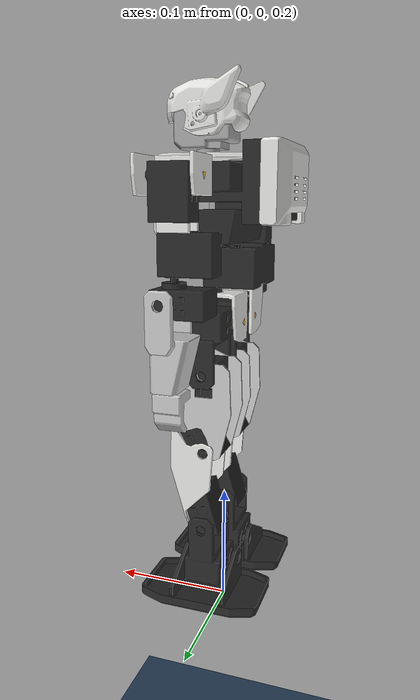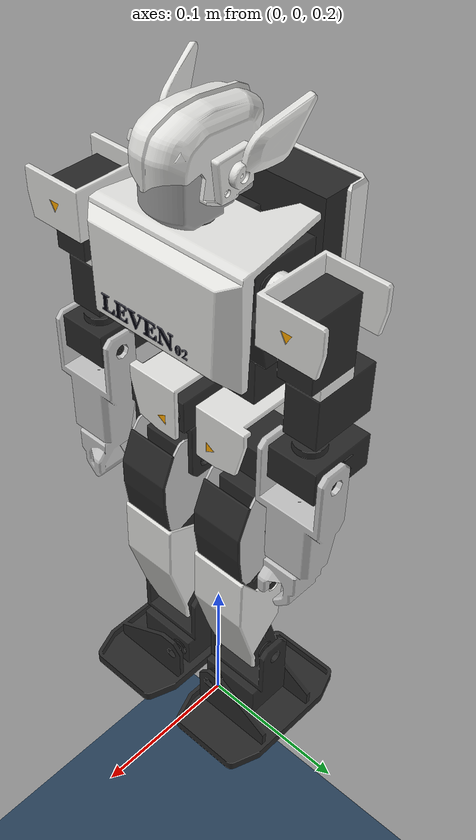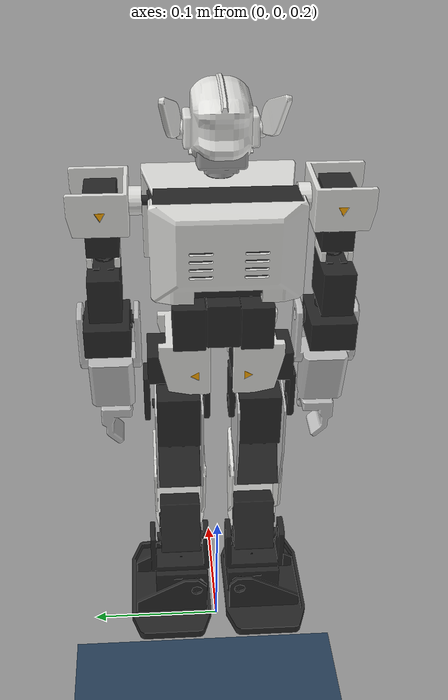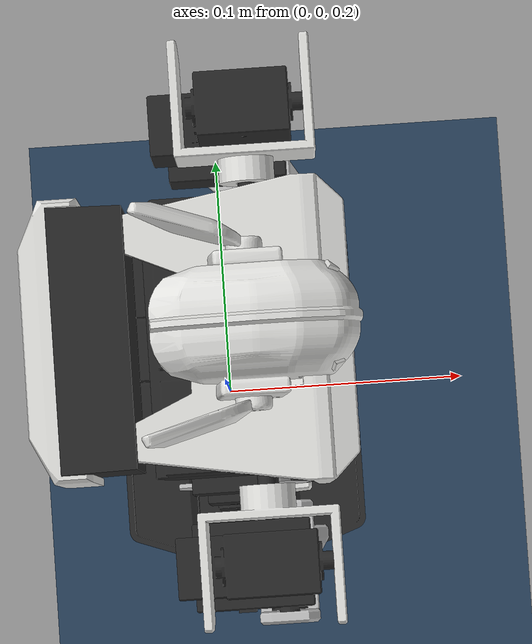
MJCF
<!--
  File: scene.xml
  Author: Izumi Ninagawa
  License: MIT License
  Copyright (c) 2026 Izumi Ninagawa
-->
<mujoco model="leven_mjcf scene">
  <include file="leven_mjcf.xml"/>

  <statistic center="0 0 0.350000" extent="0.800000"/>

  <visual>
    <headlight diffuse="0.6 0.6 0.6" ambient="0.3 0.3 0.3" specular="0 0 0"/>
    <rgba haze="0.15 0.25 0.35 1"/>
    <global azimuth="-130" elevation="-20"/>
  </visual>

  <asset>
    <texture type="skybox" builtin="gradient" rgb1="0.3 0.5 0.7" rgb2="0 0 0" width="512" height="3072"/>
    <texture type="2d" name="groundplane" builtin="checker" mark="edge" rgb1="0.2 0.3 0.4" rgb2="0.1 0.2 0.3"
      markrgb="0.8 0.8 0.8" width="300" height="300"/>
    <material name="groundplane" texture="groundplane" texuniform="true" texrepeat="5 5" reflectance="0.2"/>
  </asset>

  <worldbody>
    <!-- Ground/Environment -->
    <light pos="0 0 1.5" dir="0 0 -1" directional="true"/>
    <geom name="floor" size="0 0 0.05" type="plane" material="groundplane" group="0"/>
  </worldbody>
</mujoco>

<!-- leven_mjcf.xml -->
<!--
  File: leven_mjcf.xml
  Author: Izumi Ninagawa
  License: MIT License
  Copyright (c) 2026 Izumi Ninagawa
-->
<mujoco model="leven_mjcf">
  <compiler angle="radian" autolimits="true" />

  <option timestep="0.002" iterations="30" cone="elliptic" impratio="100" />

  <default>
    <!-- textset -->
    <joint damping="0.1" armature="0.01" frictionloss="0.005"/>
    <position inheritrange="1" timeconst="0.01"/>
    <geom friction="0.4" margin="0.001" condim="3"/>
    <!-- textーtext：group=0 -->
    <default class="collision">
      <geom group="0"/>
    </default>
    <!-- text：group=1(text) -->
    <default class="visual">
      <geom contype="0" conaffinity="0" group="1"/>
    </default>
  </default>

  <asset>
    <material name="metal" rgba=".9 .95 .95 1" />
    <material name="black" rgba="0 0 0 1" />
    <material name="white" rgba="1 1 1 1" />
    <material name="gray" rgba="0.671705 0.692426 0.774270 1" />

    <mesh name="c_chest_laven" file="assets/c_chest_laven.obj" />
    <mesh name="c_chest_leven_dec1" file="assets/c_chest_leven_dec1.obj" />
    <mesh name="c_chest_leven_dec2" file="assets/c_chest_leven_dec2.obj" />
    <mesh name="c_head_laven" file="assets/c_head_laven.obj" />
    <mesh name="c_waist" file="assets/c_waist.obj" />
    <mesh name="l_ankle" file="assets/l_ankle.obj" />
    <mesh name="l_arm_lower" file="assets/l_arm_lower.obj" />
    <mesh name="l_arm_upper" file="assets/l_arm_upper.obj" />
    <mesh name="l_arm_upper_dec1" file="assets/l_arm_upper_dec1.obj" />
    <mesh name="l_elbow" file="assets/l_elbow.obj" />
    <mesh name="l_foot_middle" file="assets/l_foot_middle.obj" />
    <mesh name="l_hipjoint_lower" file="assets/l_hipjoint_lower.obj" />
    <mesh name="l_hipjoint_upper" file="assets/l_hipjoint_upper.obj" />
    <mesh name="l_hipjoint_upper_dec1" file="assets/l_hipjoint_upper_dec1.obj" />
    <mesh name="l_leg_lower" file="assets/l_leg_lower.obj" />
    <mesh name="l_leg_lower_dec1" file="assets/l_leg_lower_dec1.obj" />
    <mesh name="l_leg_upper" file="assets/l_leg_upper.obj" />
    <mesh name="l_leg_upper_dec1" file="assets/l_leg_upper_dec1.obj" />
    <mesh name="l_shoulder" file="assets/l_shoulder.obj" />
    <mesh name="l_shoulder_dec1" file="assets/l_shoulder_dec1.obj" />
    <mesh name="r_ankle" file="assets/r_ankle.obj" />
    <mesh name="r_arm_lower" file="assets/r_arm_lower.obj" />
    <mesh name="r_arm_upper" file="assets/r_arm_upper.obj" />
    <mesh name="r_arm_upper_dec1" file="assets/r_arm_upper_dec1.obj" />
    <mesh name="r_elbow" file="assets/r_elbow.obj" />
    <mesh name="r_foot_middle" file="assets/r_foot_middle.obj" />
    <mesh name="r_hipjoint_lower" file="assets/r_hipjoint_lower.obj" />
    <mesh name="r_hipjoint_upper" file="assets/r_hipjoint_upper.obj" />
    <mesh name="r_hipjoint_upper_dec1" file="assets/r_hipjoint_upper_dec1.obj" />
    <mesh name="r_leg_lower" file="assets/r_leg_lower.obj" />
    <mesh name="r_leg_lower_dec1" file="assets/r_leg_lower_dec1.obj" />
    <mesh name="r_leg_upper" file="assets/r_leg_upper.obj" />
    <mesh name="r_leg_upper_dec1" file="assets/r_leg_upper_dec1.obj" />
    <mesh name="r_shoulder" file="assets/r_shoulder.obj" />
    <mesh name="r_shoulder_dec1" file="assets/r_shoulder_dec1.obj" />
    <mesh name="c_head_dec1" file="assets/c_head_dec1.obj" />
  </asset>

  <worldbody>
    <body name="c_pelvis" pos="0 0 0.5">
      <freejoint />
      <inertial pos="-0.011334 0.000031 -0.001324" mass="0.1428" fullinertia="0.00007893 0.00005228 0.00008515 0 0 0" />
      <!-- text(displaytext) -->
      <geom class="visual" type="mesh" mesh="c_waist" rgba="0.153 0.153 0.153 1.0" group="1"/>
      <!-- textー(text) -->
      <geom class="collision" type="box" size="0.0205 0.03205 0.01475" pos="-0.0115 0.0 -0.002" quat="1.0 0.0 0.0 0.0" group="3"/>
      <body name="c_torso" pos="0.0 -0.0 0.0198">
        <joint name="c_spine_01_yp" type="hinge" pos="0 0 0" axis="0 0 1" range="-3.141592653589793 3.141592653589793" limited="true" margin="0.0035" armature="0.01" frictionloss="0.005" damping="0.18" />
        <inertial pos="-0.016071 -0.000121 0.032638" mass="0.4215" fullinertia="0.0006944 0.00082653 0.00086974 0 0 0" />
        <!-- text(displaytext) -->
        <geom class="visual" type="mesh" mesh="c_chest_laven" rgba="0.153 0.153 0.153 1.0" group="1"/>
        <!-- textー(text) -->
        <geom class="collision" type="box" size="0.0156 0.04235 0.0297" pos="-0.0396 0.0 0.0409" quat="1.0 0.0 0.0 0.0" group="3"/>
        <geom class="collision" type="box" size="0.0061 0.04885 0.0332" pos="0.0405 0.0 0.0299" quat="1.0 0.0 0.0 0.0" group="3"/>
        <body name="c_head" pos="0.01603 0.0 0.0624">
          <joint name="c_neck_zy" type="hinge" pos="0 0 0" axis="0 0 1" range="-3.141592653589793 3.141592653589793" limited="true" margin="0.0035" armature="0.01" frictionloss="0.005" damping="0.18" />
          <inertial pos="0.004414 0.000003 0.02119" mass="0.013" fullinertia="0.0000041 0.00000528 0.00000497 0 0 0" />
          <!-- text(displaytext) -->
          <geom class="visual" type="mesh" mesh="c_head_laven" rgba="0.635 0.635 0.635 1.0" group="1"/>
          <!-- textー(text) -->
          <geom class="collision" type="box" size="0.0235 0.0145 0.01575" pos="0.0032 0.0 0.0227" quat="1.0 0.0 0.0 0.0" group="3"/>
          <geom class="visual" type="mesh" mesh="c_head_dec1" rgba="0.882 0.882 0.871 1.0" pos="0.0 0.0 0.0"/>
          <camera name="CAMERA_NODE" pos="0.033 5e-06 0.024" euler="0.0 0.0 0.0" fovy="45"/>
        </body>
        <body name="l_shoulder" pos="0.01603 0.048855 0.045405">
          <joint name="l_shoulder_yp" type="hinge" pos="0 0 0" axis="0 1 0" range="-3.141592653589793 3.141592653589793" limited="true" margin="0.0035" armature="0.01" frictionloss="0.005" damping="0.18" />
          <inertial pos="-0.000143 0.021036 0.000103" mass="0.014" fullinertia="0.00000319 0.00000465 0.0000058 0 0 0" />
          <!-- text(displaytext) -->
          <geom class="visual" type="mesh" mesh="l_shoulder" rgba="0.882 0.882 0.871 1.0" group="1"/>
          <!-- textー(text) -->
          <geom class="collision" type="cylinder" size="0.01 0.0036" pos="0.0 0.004 0.0" quat="0.7071067811865476 -0.7071067811865475 0.0 0.0" group="3"/>
          <body name="l_arm_upper" pos="0.0 0.02555 0.0">
            <joint name="l_shoulder_xr" type="hinge" pos="0 0 0" axis="1 0 0" range="-0.174532925199433 3.316125578789226" limited="true" margin="0.0035" armature="0.01" frictionloss="0.005" damping="0.18" />
            <inertial pos="-0.002104 0.000357 -0.033527" mass="0.098" fullinertia="0.00007063 0.00007913 0.00003688 0 0 0" />
            <!-- text(displaytext) -->
            <geom class="visual" type="mesh" mesh="l_arm_upper" rgba="0.153 0.153 0.153 1.0" group="1"/>
            <!-- textー(text) -->
            <geom class="collision" type="box" size="0.01445 0.01045 0.038" pos="-0.0002 0.0 -0.0305" quat="1.0 0.0 0.0 0.0" group="3"/>
            <body name="l_elbow" pos="-0.00015 0.0 -0.074">
              <joint name="l_elbow_zy" type="hinge" pos="0 0 0" axis="0 0 1" range="-1.570796326794897 1.570796326794897" limited="true" margin="0.0035" armature="0.01" frictionloss="0.005" damping="0.18" />
              <inertial pos="-0.006581 0.000258 -0.014196" mass="0.044" fullinertia="0.0000105 0.00001256 0.00001357 0 0 0" />
              <!-- text(displaytext) -->
              <geom class="visual" type="mesh" mesh="l_elbow" rgba="0.153 0.153 0.153 1.0" group="1"/>
              <!-- textー(text) -->
              <geom class="collision" type="box" size="0.0205 0.01505 0.01005" pos="-0.007 0.0005 -0.0145" quat="1.0 0.0 0.0 0.0" group="3"/>
              <body name="l_arm_lower" pos="0.004527 0.0 -0.01457">
                <joint name="l_elbow_yp" type="hinge" pos="0 0 0" axis="0 1 0" range="-2.443460952792061 0.523598775598299" limited="true" margin="0.0035" armature="0.01" frictionloss="0.005" damping="0.18" />
                <inertial pos="-0.002104 0.000357 -0.043527" mass="0.03" fullinertia="0.00005277 0.00005106 0.00001242 0 0 0" />
                <!-- text(displaytext) -->
                <geom class="visual" type="mesh" mesh="l_arm_lower" rgba="0.757 0.757 0.757 1.0" group="1"/>
                <!-- textー(text) -->
                <geom class="collision" type="capsule" size="0.0161 0.01945" pos="-0.0022 0.0 -0.0616" quat="1.0 0.0 0.0 0.0" group="3"/>
              </body>
            </body>
            <geom class="visual" type="mesh" mesh="l_arm_upper_dec1" rgba="0.882 0.882 0.871 1.0" pos="0.0 0.0 0.0"/>
          </body>
          <geom class="visual" type="mesh" mesh="l_shoulder_dec1" rgba="1.0 0.667 0.0 1.0" pos="0.0 0.0 0.0"/>
        </body>
        <body name="r_shoulder" pos="0.01603 -0.048855 0.045405">
          <joint name="r_shoulder_yp" type="hinge" pos="0 0 0" axis="0 1 0" range="-3.141592653589793 3.141592653589793" limited="true" margin="0.0035" armature="0.01" frictionloss="0.005" damping="0.18" />
          <inertial pos="-0.000143 -0.021036 0.000103" mass="0.014" fullinertia="0.00000319 0.00000465 0.0000058 0 0 0" />
          <!-- text(displaytext) -->
          <geom class="visual" type="mesh" mesh="r_shoulder" rgba="0.882 0.882 0.871 1.0" group="1"/>
          <!-- textー(text) -->
          <geom class="collision" type="cylinder" size="0.01 0.0036" pos="0.0 -0.004 0.0" quat="0.7071067811865476 0.7071067811865475 0.0 -0.0" group="3"/>
          <body name="r_arm_upper" pos="0.0 -0.02555 0.0">
            <joint name="r_shoulder_xr" type="hinge" pos="0 0 0" axis="1 0 0" range="-3.316125578789226 0.174532925199433" limited="true" margin="0.0035" armature="0.01" frictionloss="0.005" damping="0.18" />
            <inertial pos="-0.002104 -0.000357 -0.033527" mass="0.098" fullinertia="0.00007063 0.00007913 0.00003688 0 0 0" />
            <!-- text(displaytext) -->
            <geom class="visual" type="mesh" mesh="r_arm_upper" rgba="0.153 0.153 0.153 1.0" group="1"/>
            <!-- textー(text) -->
            <geom class="collision" type="box" size="0.01445 0.01045 0.038" pos="-0.0002 0.0 -0.0305" quat="1.0 0.0 0.0 0.0" group="3"/>
            <body name="r_elbow" pos="-0.00015 -0.0 -0.074">
              <joint name="r_elbow_zy" type="hinge" pos="0 0 0" axis="0 0 1" range="-1.570796326794897 1.570796326794897" limited="true" margin="0.0035" armature="0.01" frictionloss="0.005" damping="0.18" />
              <inertial pos="-0.006581 -0.000258 -0.014196" mass="0.044" fullinertia="0.0000105 0.00001256 0.00001357 0 0 0" />
              <!-- text(displaytext) -->
              <geom class="visual" type="mesh" mesh="r_elbow" rgba="0.153 0.153 0.153 1.0" group="1"/>
              <!-- textー(text) -->
              <geom class="collision" type="box" size="0.0205 0.01505 0.01005" pos="-0.007 -0.0005 -0.0145" quat="1.0 0.0 0.0 0.0" group="3"/>
              <body name="r_arm_lower" pos="0.004527 -0.0 -0.01457">
                <joint name="r_elbow_yp" type="hinge" pos="0 0 0" axis="0 1 0" range="-2.443460952792061 0.523598775598299" limited="true" margin="0.0035" armature="0.01" frictionloss="0.005" damping="0.18" />
                <inertial pos="-0.002104 -0.000357 -0.043527" mass="0.03" fullinertia="0.00005277 0.00005106 0.00001242 0 0 0" />
                <!-- text(displaytext) -->
                <geom class="visual" type="mesh" mesh="r_arm_lower" rgba="0.757 0.757 0.757 1.0" group="1"/>
                <!-- textー(text) -->
                <geom class="collision" type="capsule" size="0.0161 0.02195" pos="-0.0022 0.0 -0.0626" quat="1.0 0.0 0.0 0.0" group="3"/>
              </body>
            </body>
            <geom class="visual" type="mesh" mesh="r_arm_upper_dec1" rgba="0.882 0.882 0.871 1.0" pos="0.0 -0.0 0.0"/>
          </body>
          <geom class="visual" type="mesh" mesh="r_shoulder_dec1" rgba="1.0 0.667 0.0 1.0" pos="0.0 -0.0 0.0"/>
        </body>
        <geom class="visual" type="mesh" mesh="c_chest_leven_dec1" rgba="0.882 0.882 0.871 1.0" pos="0.0 0.0 0.0"/>
        <geom class="visual" type="mesh" mesh="c_chest_leven_dec2" rgba="0.0 0.0 0.039 1.0" pos="0.0 0.0 0.0"/>
        <site name="IMU_SITE" pos="-0.04 1.9e-05 0.04" euler="0.0 0.0 0.0" size="0.01" group="4"/>
      </body>
      <body name="l_hipjoint_upper" pos="0.0 0.02155 -0.02175">
        <joint name="l_hipjoint_zy" type="hinge" pos="0 0 0" axis="0 0 1" range="-0.349065850398866 0.523598775598299" limited="true" margin="0.0035" armature="0.01" frictionloss="0.005" damping="0.18" />
        <inertial pos="0.002326 0.001426 -0.01121" mass="0.0115" fullinertia="0.00000402 0.0000068 0.0000065 0 0 0" />
        <!-- text(displaytext) -->
        <geom class="visual" type="mesh" mesh="l_hipjoint_upper" rgba="0.882 0.882 0.871 1.0" group="1"/>
        <!-- textー(text) -->
        <geom class="collision" type="box" size="0.02305 0.01375 0.0015" pos="0.0028 0.0005 -0.001" quat="1.0 0.0 0.0 0.0" group="3"/>
        <body name="l_hipjoint_lower" pos="0.0 -0.00455 -0.0232">
          <joint name="l_hipjoint_xr" type="hinge" pos="0 0 0" axis="1 0 0" range="-0.174532925199433 1.570796326794897" limited="true" margin="0.0035" armature="0.01" frictionloss="0.005" damping="0.18" />
          <inertial pos="0.003874 0.0115 -0.00485" mass="0.058" fullinertia="0.00003081 0.00001833 0.00002693 0 0 0" />
          <!-- text(displaytext) -->
          <geom class="visual" type="mesh" mesh="l_hipjoint_lower" rgba="0.153 0.153 0.153 1.0" group="1"/>
          <!-- textー(text) -->
          <geom class="collision" type="box" size="0.01455 0.02025 0.00995" pos="0.0038 0.0115 0.0" quat="1.0 0.0 0.0 0.0" group="3"/>
          <body name="l_leg_upper" pos="0.0039 0.0115 -0.0385">
            <joint name="l_hipjoint_yp" type="hinge" pos="0 0 0" axis="0 1 0" range="-1.570796326794897 1.570796326794897" limited="true" margin="0.0035" armature="0.01" frictionloss="0.005" damping="0.18" />
            <inertial pos="0.004137 -0.00005 -0.032305" mass="0.091" fullinertia="0.00006864 0.00006946 0.0000304 0 0 0" />
            <!-- text(displaytext) -->
            <geom class="visual" type="mesh" mesh="l_leg_upper" rgba="0.153 0.153 0.153 1.0" group="1"/>
            <!-- textー(text) -->
            <geom class="collision" type="box" size="0.00965 0.01605 0.03825" pos="0.0003 0.0003 -0.0298" quat="1.0 0.0 0.0 0.0" group="3"/>
            <body name="l_leg_lower" pos="7e-05 0.0 -0.06501">
              <joint name="l_knee_yp" type="hinge" pos="0 0 0" axis="0 1 0" range="-0.087266462599716 2.792526803190927" limited="true" margin="0.0035" armature="0.01" frictionloss="0.005" damping="0.18" />
              <inertial pos="0.001202 0.0001 -0.030834" mass="0.061" fullinertia="0.00003888 0.00003893 0.00001607 0 0 0" />
              <!-- text(displaytext) -->
              <geom class="visual" type="mesh" mesh="l_leg_lower" rgba="0.153 0.153 0.153 1.0" group="1"/>
              <!-- textー(text) -->
              <geom class="collision" type="box" size="0.01025 0.0155 0.02" pos="0.0033 0.0003 -0.0542" quat="0.9902680684146087 -0.0009604974588484768 0.13916978883016126 -2.27680269874065e-10" group="3"/>
              <body name="l_ankle" pos="8e-05 -1e-06 -0.0652">
                <joint name="l_ankle_yp" type="hinge" pos="0 0 0" axis="0 1 0" range="-1.919862177193763 2.268928027592628" limited="true" margin="0.0035" armature="0.01" frictionloss="0.005" damping="0.18" />
                <inertial pos="0.001028 0.00022 -0.032516" mass="0.058" fullinertia="0.0000342 0.00002997 0.00002268 0 0 0" />
                <!-- text(displaytext) -->
                <geom class="visual" type="mesh" mesh="l_ankle" rgba="0.153 0.153 0.153 1.0" group="1"/>
                <!-- textー(text) -->
                <geom class="collision" type="box" size="0.01455 0.02075 0.00945" pos="-0.0002 0.0 -0.0385" quat="1.0 0.0 0.0 0.0" group="3"/>
                <body name="l_foot" pos="0.0 -0.011503 -0.03848">
                  <joint name="l_ankle_xr" type="hinge" pos="0 0 0" axis="1 0 0" range="-1.570796326794897 0.349065850398866" limited="true" margin="0.0035" armature="0.01" frictionloss="0.005" damping="0.18" />
                  <inertial pos="0.000045 0.019624 -0.020018" mass="0.0301" fullinertia="0.00001987 0.0000308 0.0000363 0 0 0" />
                  <!-- text(displaytext) -->
                  <geom class="visual" type="mesh" mesh="l_foot_middle" rgba="0.153 0.153 0.153 1.0" group="1"/>
                  <!-- textー(text) -->
                  <geom class="collision" type="mesh" mesh="l_foot_middle" pos="0.0 0.0 0.0" group="3"/>
                </body>
              </body>
              <geom class="visual" type="mesh" mesh="l_leg_lower_dec1" rgba="0.882 0.882 0.871 1.0" pos="0.0 0.0 0.0"/>
            </body>
            <geom class="visual" type="mesh" mesh="l_leg_upper_dec1" rgba="0.757 0.757 0.757 1.0" pos="0.0 0.0 0.0"/>
          </body>
        </body>
        <geom class="visual" type="mesh" mesh="l_hipjoint_upper_dec1" rgba="1.0 0.667 0.0 1.0" pos="0.0 0.0 0.0"/>
      </body>
      <body name="r_hipjoint_upper" pos="0.0 -0.02155 -0.02175">
        <joint name="r_hipjoint_zy" type="hinge" pos="0 0 0" axis="0 0 1" range="-0.523598775598299 0.349065850398866" limited="true" margin="0.0035" armature="0.01" frictionloss="0.005" damping="0.18" />
        <inertial pos="0.002326 -0.001426 -0.01121" mass="0.0115" fullinertia="0.00000402 0.0000068 0.0000065 0 0 0" />
        <!-- text(displaytext) -->
        <geom class="visual" type="mesh" mesh="r_hipjoint_upper" rgba="0.882 0.882 0.871 1.0" group="1"/>
        <!-- textー(text) -->
        <geom class="collision" type="box" size="0.02305 0.01375 0.0015" pos="0.0028 -0.0005 -0.001" quat="1.0 0.0 0.0 0.0" group="3"/>
        <body name="r_hipjoint_lower" pos="0.0 0.00455 -0.0232">
          <joint name="r_hipjoint_xr" type="hinge" pos="0 0 0" axis="1 0 0" range="-1.570796326794897 0.174532925199433" limited="true" margin="0.0035" armature="0.01" frictionloss="0.005" damping="0.18" />
          <inertial pos="0.003874 -0.0115 -0.00485" mass="0.058" fullinertia="0.00003081 0.00001833 0.00002693 0 0 0" />
          <!-- text(displaytext) -->
          <geom class="visual" type="mesh" mesh="r_hipjoint_lower" rgba="0.153 0.153 0.153 1.0" group="1"/>
          <!-- textー(text) -->
          <geom class="collision" type="box" size="0.01455 0.02025 0.00995" pos="0.0038 -0.0115 0.0" quat="1.0 0.0 0.0 0.0" group="3"/>
          <body name="r_leg_upper" pos="0.0039 -0.0115 -0.0385">
            <joint name="r_hipjoint_yp" type="hinge" pos="0 0 0" axis="0 1 0" range="-1.570796326794897 1.570796326794897" limited="true" margin="0.0035" armature="0.01" frictionloss="0.005" damping="0.18" />
            <inertial pos="0.004137 0.00005 -0.032305" mass="0.091" fullinertia="0.00006864 0.00006946 0.0000304 0 0 0" />
            <!-- text(displaytext) -->
            <geom class="visual" type="mesh" mesh="r_leg_upper" rgba="0.153 0.153 0.153 1.0" group="1"/>
            <!-- textー(text) -->
            <geom class="collision" type="box" size="0.00965 0.01605 0.03825" pos="0.0003 -0.0003 -0.0298" quat="1.0 0.0 0.0 0.0" group="3"/>
            <body name="r_leg_lower" pos="7e-05 -0.0 -0.06501">
              <joint name="r_knee_yp" type="hinge" pos="0 0 0" axis="0 1 0" range="-0.087266462599716 2.792526803190927" limited="true" margin="0.0035" armature="0.01" frictionloss="0.005" damping="0.18" />
              <inertial pos="0.001202 -0.0001 -0.030834" mass="0.061" fullinertia="0.00003888 0.00003893 0.00001607 0 0 0" />
              <!-- text(displaytext) -->
              <geom class="visual" type="mesh" mesh="r_leg_lower" rgba="0.153 0.153 0.153 1.0" group="1"/>
              <!-- textー(text) -->
              <geom class="collision" type="box" size="0.01025 0.0155 0.02" pos="0.0033 -0.0003 -0.0542" quat="0.9902680684146087 0.0009604974588484768 0.13916978883016126 2.27680269874065e-10" group="3"/>
              <body name="r_ankle" pos="8e-05 1e-06 -0.0652">
                <joint name="r_ankle_yp" type="hinge" pos="0 0 0" axis="0 1 0" range="-1.919862177193763 2.268928027592628" limited="true" margin="0.0035" armature="0.01" frictionloss="0.005" damping="0.18" />
                <inertial pos="0.001028 -0.00022 -0.032516" mass="0.058" fullinertia="0.0000342 0.00002997 0.00002268 0 0 0" />
                <!-- text(displaytext) -->
                <geom class="visual" type="mesh" mesh="r_ankle" rgba="0.153 0.153 0.153 1.0" group="1"/>
                <!-- textー(text) -->
                <geom class="collision" type="box" size="0.01455 0.02075 0.00945" pos="-0.0002 0.0 -0.0385" quat="1.0 0.0 0.0 0.0" group="3"/>
                <body name="r_foot" pos="0.0 0.011503 -0.03848">
                  <joint name="r_ankle_xr" type="hinge" pos="0 0 0" axis="1 0 0" range="-0.349065850398866 1.570796326794897" limited="true" margin="0.0035" armature="0.01" frictionloss="0.005" damping="0.18" />
                  <inertial pos="0.000045 -0.019624 -0.020018" mass="0.0301" fullinertia="0.00001987 0.0000308 0.0000363 0 0 0" />
                  <!-- text(displaytext) -->
                  <geom class="visual" type="mesh" mesh="r_foot_middle" rgba="0.153 0.153 0.153 1.0" group="1"/>
                  <!-- textー(text) -->
                  <geom class="collision" type="mesh" mesh="r_foot_middle" pos="0.0 0.0 0.0" group="3"/>
                </body>
              </body>
              <geom class="visual" type="mesh" mesh="r_leg_lower_dec1" rgba="0.882 0.882 0.871 1.0" pos="0.0 -0.0 0.0"/>
            </body>
            <geom class="visual" type="mesh" mesh="r_leg_upper_dec1" rgba="0.757 0.757 0.757 1.0" pos="0.0 -0.0 0.0"/>
          </body>
        </body>
        <geom class="visual" type="mesh" mesh="r_hipjoint_upper_dec1" rgba="1.0 0.667 0.0 1.0" pos="0.0 -0.0 0.0"/>
      </body>
    </body>
  </worldbody>

  <actuator>
    <position name="c_torso_actuator" joint="c_spine_01_yp" gear="1" kp="50" kv="1" forcerange="-2.64 2.64" forcelimited="true"/>
    <position name="c_head_actuator" joint="c_neck_zy" gear="1" kp="50" kv="1" forcerange="-2.64 2.64" forcelimited="true"/>
    <position name="l_shoulder_actuator" joint="l_shoulder_yp" gear="1" kp="50" kv="1" forcerange="-2.64 2.64" forcelimited="true"/>
    <position name="l_arm_upper_actuator" joint="l_shoulder_xr" gear="1" kp="50" kv="1" forcerange="-2.64 2.64" forcelimited="true"/>
    <position name="l_elbow_actuator" joint="l_elbow_zy" gear="1" kp="50" kv="1" forcerange="-2.64 2.64" forcelimited="true"/>
    <position name="l_arm_lower_actuator" joint="l_elbow_yp" gear="1" kp="50" kv="1" forcerange="-2.64 2.64" forcelimited="true"/>
    <position name="r_shoulder_actuator" joint="r_shoulder_yp" gear="1" kp="50" kv="1" forcerange="-2.64 2.64" forcelimited="true"/>
    <position name="r_arm_upper_actuator" joint="r_shoulder_xr" gear="1" kp="50" kv="1" forcerange="-2.64 2.64" forcelimited="true"/>
    <position name="r_elbow_actuator" joint="r_elbow_zy" gear="1" kp="50" kv="1" forcerange="-2.64 2.64" forcelimited="true"/>
    <position name="r_arm_lower_actuator" joint="r_elbow_yp" gear="1" kp="50" kv="1" forcerange="-2.64 2.64" forcelimited="true"/>
    <position name="l_hipjoint_upper_actuator" joint="l_hipjoint_zy" gear="1" kp="50" kv="1" forcerange="-2.64 2.64" forcelimited="true"/>
    <position name="l_hipjoint_lower_actuator" joint="l_hipjoint_xr" gear="1" kp="50" kv="1" forcerange="-2.64 2.64" forcelimited="true"/>
    <position name="l_leg_upper_actuator" joint="l_hipjoint_yp" gear="1" kp="50" kv="1" forcerange="-2.64 2.64" forcelimited="true"/>
    <position name="l_leg_lower_actuator" joint="l_knee_yp" gear="1" kp="50" kv="1" forcerange="-2.64 2.64" forcelimited="true"/>
    <position name="l_ankle_actuator" joint="l_ankle_yp" gear="1" kp="50" kv="1" forcerange="-2.64 2.64" forcelimited="true"/>
    <position name="l_foot_actuator" joint="l_ankle_xr" gear="1" kp="50" kv="1" forcerange="-2.64 2.64" forcelimited="true"/>
    <position name="r_hipjoint_upper_actuator" joint="r_hipjoint_zy" gear="1" kp="50" kv="1" forcerange="-2.64 2.64" forcelimited="true"/>
    <position name="r_hipjoint_lower_actuator" joint="r_hipjoint_xr" gear="1" kp="50" kv="1" forcerange="-2.64 2.64" forcelimited="true"/>
    <position name="r_leg_upper_actuator" joint="r_hipjoint_yp" gear="1" kp="50" kv="1" forcerange="-2.64 2.64" forcelimited="true"/>
    <position name="r_leg_lower_actuator" joint="r_knee_yp" gear="1" kp="50" kv="1" forcerange="-2.64 2.64" forcelimited="true"/>
    <position name="r_ankle_actuator" joint="r_ankle_yp" gear="1" kp="50" kv="1" forcerange="-2.64 2.64" forcelimited="true"/>
    <position name="r_foot_actuator" joint="r_ankle_xr" gear="1" kp="50" kv="1" forcerange="-2.64 2.64" forcelimited="true"/>
  </actuator>

  <sensor>
    <accelerometer name="IMU_SITE_accel" site="IMU_SITE"/>
    <gyro name="IMU_SITE_gyro" site="IMU_SITE"/>
  </sensor>
</mujoco>
